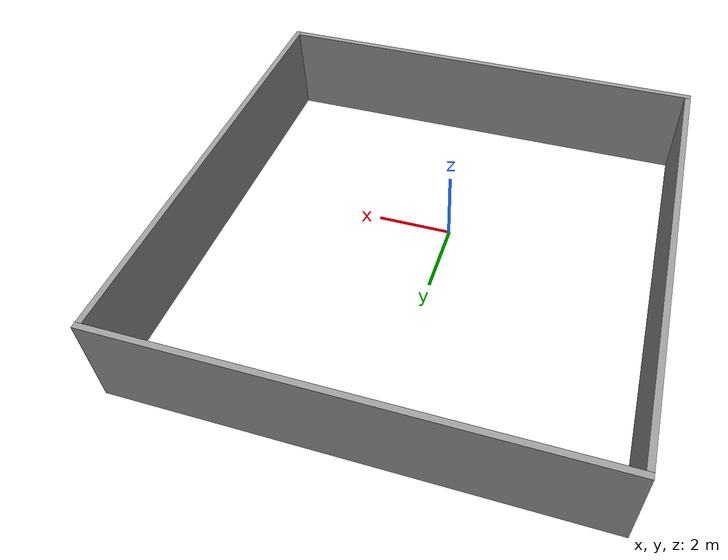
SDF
<?xml version='1.0'?>
<sdf version='1.7'>
  <model name='warehouse'>
    <pose>0.281361 1.23747 0 0 -0 0</pose>
    <link name='Wall_32'>
      <collision name='Wall_32_Collision'>
        <geometry>
          <box>
            <size>12 0.15 2.5</size>
          </box>
        </geometry>
        <pose>0 0 1.25 0 -0 0</pose>
      </collision>
      <visual name='Wall_32_Visual'>
        <pose>0 0 1.25 0 -0 0</pose>
        <geometry>
          <box>
            <size>12 0.15 2.5</size>
          </box>
        </geometry>
        <material>
          <script>
            <uri>file://media/materials/scripts/gazebo.material</uri>
            <name>Gazebo/Grey</name>
          </script>
          <ambient>1 1 1 1</ambient>
        </material>
        <meta>
          <layer>0</layer>
        </meta>
      </visual>
      <pose>0 5.925 0 0 -0 0</pose>
    </link>
    <link name='Wall_33'>
      <collision name='Wall_33_Collision'>
        <geometry>
          <box>
            <size>12 0.15 2.5</size>
          </box>
        </geometry>
        <pose>0 0 1.25 0 -0 0</pose>
      </collision>
      <visual name='Wall_33_Visual'>
        <pose>0 0 1.25 0 -0 0</pose>
        <geometry>
          <box>
            <size>12 0.15 2.5</size>
          </box>
        </geometry>
        <material>
          <script>
            <uri>file://media/materials/scripts/gazebo.material</uri>
            <name>Gazebo/Grey</name>
          </script>
          <ambient>1 1 1 1</ambient>
        </material>
        <meta>
          <layer>0</layer>
        </meta>
      </visual>
      <pose>5.925 0 0 0 -0 -1.5708</pose>
    </link>
    <link name='Wall_34'>
      <collision name='Wall_34_Collision'>
        <geometry>
          <box>
            <size>12 0.15 2.5</size>
          </box>
        </geometry>
        <pose>0 0 1.25 0 -0 0</pose>
      </collision>
      <visual name='Wall_34_Visual'>
        <pose>0 0 1.25 0 -0 0</pose>
        <geometry>
          <box>
            <size>12 0.15 2.5</size>
          </box>
        </geometry>
        <material>
          <script>
            <uri>file://media/materials/scripts/gazebo.material</uri>
            <name>Gazebo/Grey</name>
          </script>
          <ambient>1 1 1 1</ambient>
        </material>
        <meta>
          <layer>0</layer>
        </meta>
      </visual>
      <pose>0 -5.925 0 0 -0 3.14159</pose>
    </link>
    <link name='Wall_35'>
      <collision name='Wall_35_Collision'>
        <geometry>
          <box>
            <size>12 0.15 2.5</size>
          </box>
        </geometry>
        <pose>0 0 1.25 0 -0 0</pose>
      </collision>
      <visual name='Wall_35_Visual'>
        <pose>0 0 1.25 0 -0 0</pose>
        <geometry>
          <box>
            <size>12 0.15 2.5</size>
          </box>
        </geometry>
        <material>
          <script>
            <uri>file://media/materials/scripts/gazebo.material</uri>
            <name>Gazebo/Grey</name>
          </script>
          <ambient>1 1 1 1</ambient>
        </material>
        <meta>
          <layer>0</layer>
        </meta>
      </visual>
      <pose>-5.925 0 0 0 -0 1.5708</pose>
    </link>
    <static>1</static>
  </model>
</sdf>
